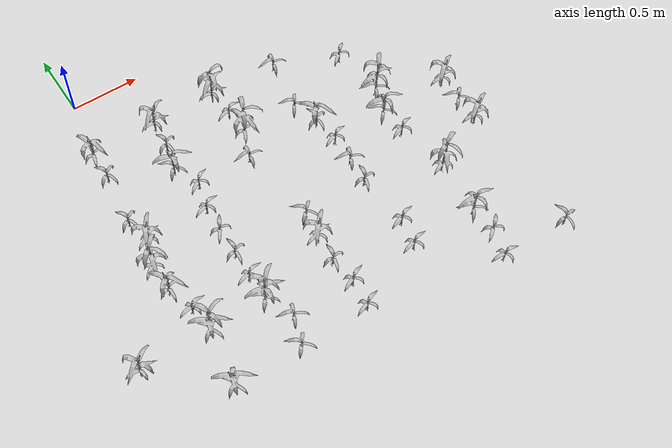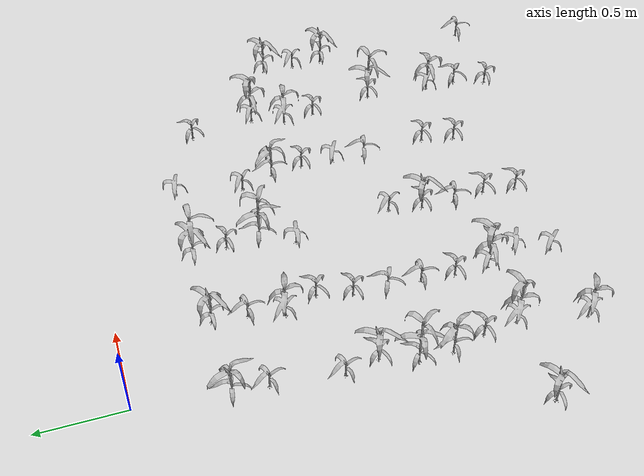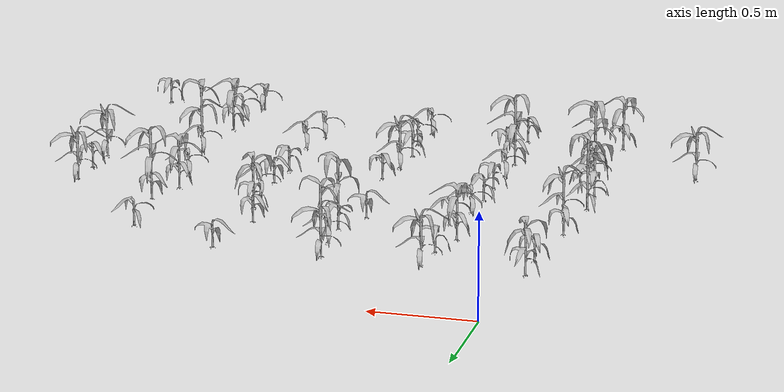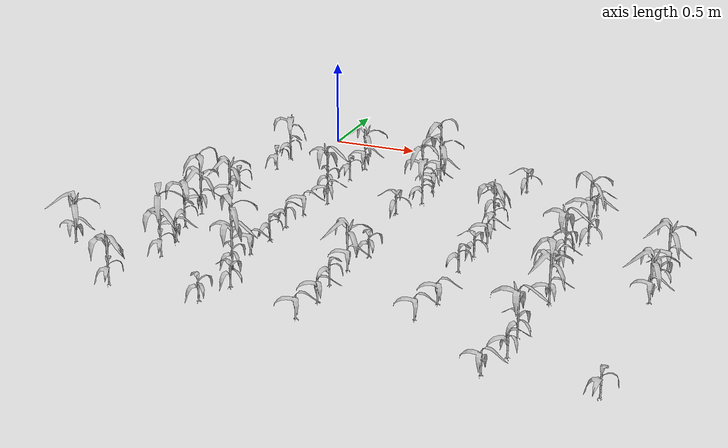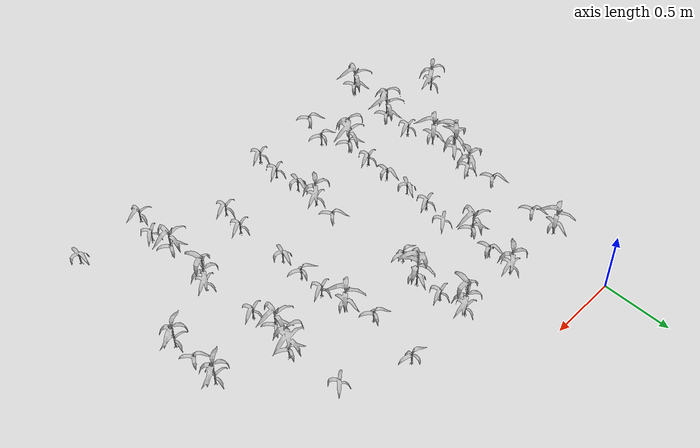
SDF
<sdf version="1.7">
 <world name="default">
  <model name="maize_-0.5837792180438823_-2.07">
   <static>1</static>
   <link name="link">
    <inertial>
     <mass>0.2</mass>
     <inertia>
      <ixx>0.166667</ixx>
      <ixy>0</ixy>
      <ixz>0</ixz>
      <iyy>0.166667</iyy>
      <iyz>0</iyz>
      <izz>0.166667</izz>
     </inertia>
    </inertial>
    <collision name="collision">
     <geometry><mesh><uri>model://corn_4/meshes/corn.dae</uri><scale>0.25 0.25 0.25</scale></mesh></geometry>
     <surface>
      <friction><ode><mu>0</mu><mu2>0</mu2></ode></friction>
      <contact><ode><kp>0</kp><kd>0</kd><max_vel>0</max_vel><min_depth>0.002</min_depth></ode></contact>
     </surface>
    </collision>
    <visual name="visual">
     <geometry><mesh><uri>model://corn_4/meshes/corn.dae</uri><scale>0.25 0.25 0.25</scale></mesh></geometry>
    </visual>
    <velocity_decay><linear>0</linear><angular>0</angular></velocity_decay>
   </link>
   <pose>-0.583779 -2.07 0.05 0 -0 0.062254</pose>
  </model>
  <model name="maize_-0.14747980939358227_-2.46">
   <static>1</static>
   <link name="link">
    <inertial>
     <mass>0.2</mass>
     <inertia>
      <ixx>0.166667</ixx>
      <ixy>0</ixy>
      <ixz>0</ixz>
      <iyy>0.166667</iyy>
      <iyz>0</iyz>
      <izz>0.166667</izz>
     </inertia>
    </inertial>
    <collision name="collision">
     <geometry><mesh><uri>model://corn_4/meshes/corn.dae</uri><scale>0.25 0.25 0.25</scale></mesh></geometry>
     <surface>
      <friction><ode><mu>0</mu><mu2>0</mu2></ode></friction>
      <contact><ode><kp>0</kp><kd>0</kd><max_vel>0</max_vel><min_depth>0.002</min_depth></ode></contact>
     </surface>
    </collision>
    <visual name="visual">
     <geometry><mesh><uri>model://corn_4/meshes/corn.dae</uri><scale>0.25 0.25 0.25</scale></mesh></geometry>
    </visual>
    <velocity_decay><linear>0</linear><angular>0</angular></velocity_decay>
   </link>
   <pose>-0.14748 -2.46 0.05 0 -0 2.08137</pose>
  </model>
  <model name="maize_-0.08241693367694108_-2.07">
   <static>1</static>
   <link name="link">
    <inertial>
     <mass>0.2</mass>
     <inertia>
      <ixx>0.166667</ixx>
      <ixy>0</ixy>
      <ixz>0</ixz>
      <iyy>0.166667</iyy>
      <iyz>0</iyz>
      <izz>0.166667</izz>
     </inertia>
    </inertial>
    <collision name="collision">
     <geometry><mesh><uri>model://corn_5/meshes/corn.dae</uri><scale>0.25 0.25 0.25</scale></mesh></geometry>
     <surface>
      <friction><ode><mu>0</mu><mu2>0</mu2></ode></friction>
      <contact><ode><kp>0</kp><kd>0</kd><max_vel>0</max_vel><min_depth>0.002</min_depth></ode></contact>
     </surface>
    </collision>
    <visual name="visual">
     <geometry><mesh><uri>model://corn_5/meshes/corn.dae</uri><scale>0.25 0.25 0.25</scale></mesh></geometry>
    </visual>
    <velocity_decay><linear>0</linear><angular>0</angular></velocity_decay>
   </link>
   <pose>-0.082417 -2.07 0.05 0 -0 2.10157</pose>
  </model>
  <model name="maize_-0.10383401512277929_-1.8749999999999996">
   <static>1</static>
   <link name="link">
    <inertial>
     <mass>0.2</mass>
     <inertia>
      <ixx>0.166667</ixx>
      <ixy>0</ixy>
      <ixz>0</ixz>
      <iyy>0.166667</iyy>
      <iyz>0</iyz>
      <izz>0.166667</izz>
     </inertia>
    </inertial>
    <collision name="collision">
     <geometry><mesh><uri>model://corn_3/meshes/corn.dae</uri><scale>0.25 0.25 0.25</scale></mesh></geometry>
     <surface>
      <friction><ode><mu>0</mu><mu2>0</mu2></ode></friction>
      <contact><ode><kp>0</kp><kd>0</kd><max_vel>0</max_vel><min_depth>0.002</min_depth></ode></contact>
     </surface>
    </collision>
    <visual name="visual">
     <geometry><mesh><uri>model://corn_3/meshes/corn.dae</uri><scale>0.25 0.25 0.25</scale></mesh></geometry>
    </visual>
    <velocity_decay><linear>0</linear><angular>0</angular></velocity_decay>
   </link>
   <pose>-0.103834 -1.875 0.05 0 -0 0.294704</pose>
  </model>
  <model name="maize_-0.1600403901094582_-1.6799999999999997">
   <static>1</static>
   <link name="link">
    <inertial>
     <mass>0.2</mass>
     <inertia>
      <ixx>0.166667</ixx>
      <ixy>0</ixy>
      <ixz>0</ixz>
      <iyy>0.166667</iyy>
      <iyz>0</iyz>
      <izz>0.166667</izz>
     </inertia>
    </inertial>
    <collision name="collision">
     <geometry><mesh><uri>model://corn_4/meshes/corn.dae</uri><scale>0.25 0.25 0.25</scale></mesh></geometry>
     <surface>
      <friction><ode><mu>0</mu><mu2>0</mu2></ode></friction>
      <contact><ode><kp>0</kp><kd>0</kd><max_vel>0</max_vel><min_depth>0.002</min_depth></ode></contact>
     </surface>
    </collision>
    <visual name="visual">
     <geometry><mesh><uri>model://corn_4/meshes/corn.dae</uri><scale>0.25 0.25 0.25</scale></mesh></geometry>
    </visual>
    <velocity_decay><linear>0</linear><angular>0</angular></velocity_decay>
   </link>
   <pose>-0.16004 -1.68 0.05 0 -0 1.64751</pose>
  </model>
  <model name="maize_-0.16652390188733834_-1.4849999999999999">
   <static>1</static>
   <link name="link">
    <inertial>
     <mass>0.2</mass>
     <inertia>
      <ixx>0.166667</ixx>
      <ixy>0</ixy>
      <ixz>0</ixz>
      <iyy>0.166667</iyy>
      <iyz>0</iyz>
      <izz>0.166667</izz>
     </inertia>
    </inertial>
    <collision name="collision">
     <geometry><mesh><uri>model://corn_5/meshes/corn.dae</uri><scale>0.25 0.25 0.25</scale></mesh></geometry>
     <surface>
      <friction><ode><mu>0</mu><mu2>0</mu2></ode></friction>
      <contact><ode><kp>0</kp><kd>0</kd><max_vel>0</max_vel><min_depth>0.002</min_depth></ode></contact>
     </surface>
    </collision>
    <visual name="visual">
     <geometry><mesh><uri>model://corn_5/meshes/corn.dae</uri><scale>0.25 0.25 0.25</scale></mesh></geometry>
    </visual>
    <velocity_decay><linear>0</linear><angular>0</angular></velocity_decay>
   </link>
   <pose>-0.166524 -1.485 0.05 0 -0 0.761583</pose>
  </model>
  <model name="maize_-0.09321236700476934_-1.2899999999999996">
   <static>1</static>
   <link name="link">
    <inertial>
     <mass>0.2</mass>
     <inertia>
      <ixx>0.166667</ixx>
      <ixy>0</ixy>
      <ixz>0</ixz>
      <iyy>0.166667</iyy>
      <iyz>0</iyz>
      <izz>0.166667</izz>
     </inertia>
    </inertial>
    <collision name="collision">
     <geometry><mesh><uri>model://corn_4/meshes/corn.dae</uri><scale>0.25 0.25 0.25</scale></mesh></geometry>
     <surface>
      <friction><ode><mu>0</mu><mu2>0</mu2></ode></friction>
      <contact><ode><kp>0</kp><kd>0</kd><max_vel>0</max_vel><min_depth>0.002</min_depth></ode></contact>
     </surface>
    </collision>
    <visual name="visual">
     <geometry><mesh><uri>model://corn_4/meshes/corn.dae</uri><scale>0.25 0.25 0.25</scale></mesh></geometry>
    </visual>
    <velocity_decay><linear>0</linear><angular>0</angular></velocity_decay>
   </link>
   <pose>-0.093212 -1.29 0.05 0 -0 0.505659</pose>
  </model>
  <model name="maize_-0.13691010093674263_-1.0949999999999998">
   <static>1</static>
   <link name="link">
    <inertial>
     <mass>0.2</mass>
     <inertia>
      <ixx>0.166667</ixx>
      <ixy>0</ixy>
      <ixz>0</ixz>
      <iyy>0.166667</iyy>
      <iyz>0</iyz>
      <izz>0.166667</izz>
     </inertia>
    </inertial>
    <collision name="collision">
     <geometry><mesh><uri>model://corn_3/meshes/corn.dae</uri><scale>0.25 0.25 0.25</scale></mesh></geometry>
     <surface>
      <friction><ode><mu>0</mu><mu2>0</mu2></ode></friction>
      <contact><ode><kp>0</kp><kd>0</kd><max_vel>0</max_vel><min_depth>0.002</min_depth></ode></contact>
     </surface>
    </collision>
    <visual name="visual">
     <geometry><mesh><uri>model://corn_3/meshes/corn.dae</uri><scale>0.25 0.25 0.25</scale></mesh></geometry>
    </visual>
    <velocity_decay><linear>0</linear><angular>0</angular></velocity_decay>
   </link>
   <pose>-0.13691 -1.095 0.05 0 -0 1.99251</pose>
  </model>
  <model name="maize_-0.08802175489732647_-0.7050000000000001">
   <static>1</static>
   <link name="link">
    <inertial>
     <mass>0.2</mass>
     <inertia>
      <ixx>0.166667</ixx>
      <ixy>0</ixy>
      <ixz>0</ixz>
      <iyy>0.166667</iyy>
      <iyz>0</iyz>
      <izz>0.166667</izz>
     </inertia>
    </inertial>
    <collision name="collision">
     <geometry><mesh><uri>model://corn_3/meshes/corn.dae</uri><scale>0.25 0.25 0.25</scale></mesh></geometry>
     <surface>
      <friction><ode><mu>0</mu><mu2>0</mu2></ode></friction>
      <contact><ode><kp>0</kp><kd>0</kd><max_vel>0</max_vel><min_depth>0.002</min_depth></ode></contact>
     </surface>
    </collision>
    <visual name="visual">
     <geometry><mesh><uri>model://corn_3/meshes/corn.dae</uri><scale>0.25 0.25 0.25</scale></mesh></geometry>
    </visual>
    <velocity_decay><linear>0</linear><angular>0</angular></velocity_decay>
   </link>
   <pose>-0.088022 -0.705 0.05 0 -0 2.01611</pose>
  </model>
  <model name="maize_-0.08969362686402746_-0.5099999999999998">
   <static>1</static>
   <link name="link">
    <inertial>
     <mass>0.2</mass>
     <inertia>
      <ixx>0.166667</ixx>
      <ixy>0</ixy>
      <ixz>0</ixz>
      <iyy>0.166667</iyy>
      <iyz>0</iyz>
      <izz>0.166667</izz>
     </inertia>
    </inertial>
    <collision name="collision">
     <geometry><mesh><uri>model://corn_4/meshes/corn.dae</uri><scale>0.25 0.25 0.25</scale></mesh></geometry>
     <surface>
      <friction><ode><mu>0</mu><mu2>0</mu2></ode></friction>
      <contact><ode><kp>0</kp><kd>0</kd><max_vel>0</max_vel><min_depth>0.002</min_depth></ode></contact>
     </surface>
    </collision>
    <visual name="visual">
     <geometry><mesh><uri>model://corn_4/meshes/corn.dae</uri><scale>0.25 0.25 0.25</scale></mesh></geometry>
    </visual>
    <velocity_decay><linear>0</linear><angular>0</angular></velocity_decay>
   </link>
   <pose>-0.089694 -0.51 0.05 0 -0 1.40322</pose>
  </model>
  <model name="maize_0.3407979610516535_-2.46">
   <static>1</static>
   <link name="link">
    <inertial>
     <mass>0.2</mass>
     <inertia>
      <ixx>0.166667</ixx>
      <ixy>0</ixy>
      <ixz>0</ixz>
      <iyy>0.166667</iyy>
      <iyz>0</iyz>
      <izz>0.166667</izz>
     </inertia>
    </inertial>
    <collision name="collision">
     <geometry><mesh><uri>model://corn_3/meshes/corn.dae</uri><scale>0.25 0.25 0.25</scale></mesh></geometry>
     <surface>
      <friction><ode><mu>0</mu><mu2>0</mu2></ode></friction>
      <contact><ode><kp>0</kp><kd>0</kd><max_vel>0</max_vel><min_depth>0.002</min_depth></ode></contact>
     </surface>
    </collision>
    <visual name="visual">
     <geometry><mesh><uri>model://corn_3/meshes/corn.dae</uri><scale>0.25 0.25 0.25</scale></mesh></geometry>
    </visual>
    <velocity_decay><linear>0</linear><angular>0</angular></velocity_decay>
   </link>
   <pose>0.340798 -2.46 0.05 0 -0 2.43215</pose>
  </model>
  <model name="maize_0.4082817132486259_-2.2649999999999997">
   <static>1</static>
   <link name="link">
    <inertial>
     <mass>0.2</mass>
     <inertia>
      <ixx>0.166667</ixx>
      <ixy>0</ixy>
      <ixz>0</ixz>
      <iyy>0.166667</iyy>
      <iyz>0</iyz>
      <izz>0.166667</izz>
     </inertia>
    </inertial>
    <collision name="collision">
     <geometry><mesh><uri>model://corn_3/meshes/corn.dae</uri><scale>0.25 0.25 0.25</scale></mesh></geometry>
     <surface>
      <friction><ode><mu>0</mu><mu2>0</mu2></ode></friction>
      <contact><ode><kp>0</kp><kd>0</kd><max_vel>0</max_vel><min_depth>0.002</min_depth></ode></contact>
     </surface>
    </collision>
    <visual name="visual">
     <geometry><mesh><uri>model://corn_3/meshes/corn.dae</uri><scale>0.25 0.25 0.25</scale></mesh></geometry>
    </visual>
    <velocity_decay><linear>0</linear><angular>0</angular></velocity_decay>
   </link>
   <pose>0.408282 -2.265 0.05 0 -0 2.75353</pose>
  </model>
  <model name="maize_0.31918511917592485_-2.07">
   <static>1</static>
   <link name="link">
    <inertial>
     <mass>0.2</mass>
     <inertia>
      <ixx>0.166667</ixx>
      <ixy>0</ixy>
      <ixz>0</ixz>
      <iyy>0.166667</iyy>
      <iyz>0</iyz>
      <izz>0.166667</izz>
     </inertia>
    </inertial>
    <collision name="collision">
     <geometry><mesh><uri>model://corn_5/meshes/corn.dae</uri><scale>0.25 0.25 0.25</scale></mesh></geometry>
     <surface>
      <friction><ode><mu>0</mu><mu2>0</mu2></ode></friction>
      <contact><ode><kp>0</kp><kd>0</kd><max_vel>0</max_vel><min_depth>0.002</min_depth></ode></contact>
     </surface>
    </collision>
    <visual name="visual">
     <geometry><mesh><uri>model://corn_5/meshes/corn.dae</uri><scale>0.25 0.25 0.25</scale></mesh></geometry>
    </visual>
    <velocity_decay><linear>0</linear><angular>0</angular></velocity_decay>
   </link>
   <pose>0.319185 -2.07 0.05 0 -0 2.46943</pose>
  </model>
  <model name="maize_0.32128164061425213_-1.8749999999999996">
   <static>1</static>
   <link name="link">
    <inertial>
     <mass>0.2</mass>
     <inertia>
      <ixx>0.166667</ixx>
      <ixy>0</ixy>
      <ixz>0</ixz>
      <iyy>0.166667</iyy>
      <iyz>0</iyz>
      <izz>0.166667</izz>
     </inertia>
    </inertial>
    <collision name="collision">
     <geometry><mesh><uri>model://corn_3/meshes/corn.dae</uri><scale>0.25 0.25 0.25</scale></mesh></geometry>
     <surface>
      <friction><ode><mu>0</mu><mu2>0</mu2></ode></friction>
      <contact><ode><kp>0</kp><kd>0</kd><max_vel>0</max_vel><min_depth>0.002</min_depth></ode></contact>
     </surface>
    </collision>
    <visual name="visual">
     <geometry><mesh><uri>model://corn_3/meshes/corn.dae</uri><scale>0.25 0.25 0.25</scale></mesh></geometry>
    </visual>
    <velocity_decay><linear>0</linear><angular>0</angular></velocity_decay>
   </link>
   <pose>0.321282 -1.875 0.05 0 -0 0.333066</pose>
  </model>
  <model name="maize_0.3348902645084721_-1.6799999999999997">
   <static>1</static>
   <link name="link">
    <inertial>
     <mass>0.2</mass>
     <inertia>
      <ixx>0.166667</ixx>
      <ixy>0</ixy>
      <ixz>0</ixz>
      <iyy>0.166667</iyy>
      <iyz>0</iyz>
      <izz>0.166667</izz>
     </inertia>
    </inertial>
    <collision name="collision">
     <geometry><mesh><uri>model://corn_3/meshes/corn.dae</uri><scale>0.25 0.25 0.25</scale></mesh></geometry>
     <surface>
      <friction><ode><mu>0</mu><mu2>0</mu2></ode></friction>
      <contact><ode><kp>0</kp><kd>0</kd><max_vel>0</max_vel><min_depth>0.002</min_depth></ode></contact>
     </surface>
    </collision>
    <visual name="visual">
     <geometry><mesh><uri>model://corn_3/meshes/corn.dae</uri><scale>0.25 0.25 0.25</scale></mesh></geometry>
    </visual>
    <velocity_decay><linear>0</linear><angular>0</angular></velocity_decay>
   </link>
   <pose>0.33489 -1.68 0.05 0 -0 1.58999</pose>
  </model>
  <model name="maize_0.3356571977783185_-1.4849999999999999">
   <static>1</static>
   <link name="link">
    <inertial>
     <mass>0.2</mass>
     <inertia>
      <ixx>0.166667</ixx>
      <ixy>0</ixy>
      <ixz>0</ixz>
      <iyy>0.166667</iyy>
      <iyz>0</iyz>
      <izz>0.166667</izz>
     </inertia>
    </inertial>
    <collision name="collision">
     <geometry><mesh><uri>model://corn_3/meshes/corn.dae</uri><scale>0.25 0.25 0.25</scale></mesh></geometry>
     <surface>
      <friction><ode><mu>0</mu><mu2>0</mu2></ode></friction>
      <contact><ode><kp>0</kp><kd>0</kd><max_vel>0</max_vel><min_depth>0.002</min_depth></ode></contact>
     </surface>
    </collision>
    <visual name="visual">
     <geometry><mesh><uri>model://corn_3/meshes/corn.dae</uri><scale>0.25 0.25 0.25</scale></mesh></geometry>
    </visual>
    <velocity_decay><linear>0</linear><angular>0</angular></velocity_decay>
   </link>
   <pose>0.335657 -1.485 0.05 0 -0 1.1115</pose>
  </model>
  <model name="maize_0.3486746501304395_-1.2899999999999996">
   <static>1</static>
   <link name="link">
    <inertial>
     <mass>0.2</mass>
     <inertia>
      <ixx>0.166667</ixx>
      <ixy>0</ixy>
      <ixz>0</ixz>
      <iyy>0.166667</iyy>
      <iyz>0</iyz>
      <izz>0.166667</izz>
     </inertia>
    </inertial>
    <collision name="collision">
     <geometry><mesh><uri>model://corn_3/meshes/corn.dae</uri><scale>0.25 0.25 0.25</scale></mesh></geometry>
     <surface>
      <friction><ode><mu>0</mu><mu2>0</mu2></ode></friction>
      <contact><ode><kp>0</kp><kd>0</kd><max_vel>0</max_vel><min_depth>0.002</min_depth></ode></contact>
     </surface>
    </collision>
    <visual name="visual">
     <geometry><mesh><uri>model://corn_3/meshes/corn.dae</uri><scale>0.25 0.25 0.25</scale></mesh></geometry>
    </visual>
    <velocity_decay><linear>0</linear><angular>0</angular></velocity_decay>
   </link>
   <pose>0.348675 -1.29 0.05 0 -0 0.383695</pose>
  </model>
  <model name="maize_0.4041965530707696_-1.0949999999999998">
   <static>1</static>
   <link name="link">
    <inertial>
     <mass>0.2</mass>
     <inertia>
      <ixx>0.166667</ixx>
      <ixy>0</ixy>
      <ixz>0</ixz>
      <iyy>0.166667</iyy>
      <iyz>0</iyz>
      <izz>0.166667</izz>
     </inertia>
    </inertial>
    <collision name="collision">
     <geometry><mesh><uri>model://corn_3/meshes/corn.dae</uri><scale>0.25 0.25 0.25</scale></mesh></geometry>
     <surface>
      <friction><ode><mu>0</mu><mu2>0</mu2></ode></friction>
      <contact><ode><kp>0</kp><kd>0</kd><max_vel>0</max_vel><min_depth>0.002</min_depth></ode></contact>
     </surface>
    </collision>
    <visual name="visual">
     <geometry><mesh><uri>model://corn_3/meshes/corn.dae</uri><scale>0.25 0.25 0.25</scale></mesh></geometry>
    </visual>
    <velocity_decay><linear>0</linear><angular>0</angular></velocity_decay>
   </link>
   <pose>0.404197 -1.095 0.05 0 -0 0.663461</pose>
  </model>
  <model name="maize_0.3207380343115877_-0.8999999999999995">
   <static>1</static>
   <link name="link">
    <inertial>
     <mass>0.2</mass>
     <inertia>
      <ixx>0.166667</ixx>
      <ixy>0</ixy>
      <ixz>0</ixz>
      <iyy>0.166667</iyy>
      <iyz>0</iyz>
      <izz>0.166667</izz>
     </inertia>
    </inertial>
    <collision name="collision">
     <geometry><mesh><uri>model://corn_4/meshes/corn.dae</uri><scale>0.25 0.25 0.25</scale></mesh></geometry>
     <surface>
      <friction><ode><mu>0</mu><mu2>0</mu2></ode></friction>
      <contact><ode><kp>0</kp><kd>0</kd><max_vel>0</max_vel><min_depth>0.002</min_depth></ode></contact>
     </surface>
    </collision>
    <visual name="visual">
     <geometry><mesh><uri>model://corn_4/meshes/corn.dae</uri><scale>0.25 0.25 0.25</scale></mesh></geometry>
    </visual>
    <velocity_decay><linear>0</linear><angular>0</angular></velocity_decay>
   </link>
   <pose>0.320738 -0.9 0.05 0 -0 2.34155</pose>
  </model>
  <model name="maize_0.3733107304725088_-0.7050000000000001">
   <static>1</static>
   <link name="link">
    <inertial>
     <mass>0.2</mass>
     <inertia>
      <ixx>0.166667</ixx>
      <ixy>0</ixy>
      <ixz>0</ixz>
      <iyy>0.166667</iyy>
      <iyz>0</iyz>
      <izz>0.166667</izz>
     </inertia>
    </inertial>
    <collision name="collision">
     <geometry><mesh><uri>model://corn_3/meshes/corn.dae</uri><scale>0.25 0.25 0.25</scale></mesh></geometry>
     <surface>
      <friction><ode><mu>0</mu><mu2>0</mu2></ode></friction>
      <contact><ode><kp>0</kp><kd>0</kd><max_vel>0</max_vel><min_depth>0.002</min_depth></ode></contact>
     </surface>
    </collision>
    <visual name="visual">
     <geometry><mesh><uri>model://corn_3/meshes/corn.dae</uri><scale>0.25 0.25 0.25</scale></mesh></geometry>
    </visual>
    <velocity_decay><linear>0</linear><angular>0</angular></velocity_decay>
   </link>
   <pose>0.373311 -0.705 0.05 0 -0 1.7845</pose>
  </model>
  <model name="maize_0.38780343678202717_-0.5099999999999998">
   <static>1</static>
   <link name="link">
    <inertial>
     <mass>0.2</mass>
     <inertia>
      <ixx>0.166667</ixx>
      <ixy>0</ixy>
      <ixz>0</ixz>
      <iyy>0.166667</iyy>
      <iyz>0</iyz>
      <izz>0.166667</izz>
     </inertia>
    </inertial>
    <collision name="collision">
     <geometry><mesh><uri>model://corn_4/meshes/corn.dae</uri><scale>0.25 0.25 0.25</scale></mesh></geometry>
     <surface>
      <friction><ode><mu>0</mu><mu2>0</mu2></ode></friction>
      <contact><ode><kp>0</kp><kd>0</kd><max_vel>0</max_vel><min_depth>0.002</min_depth></ode></contact>
     </surface>
    </collision>
    <visual name="visual">
     <geometry><mesh><uri>model://corn_4/meshes/corn.dae</uri><scale>0.25 0.25 0.25</scale></mesh></geometry>
    </visual>
    <velocity_decay><linear>0</linear><angular>0</angular></velocity_decay>
   </link>
   <pose>0.387803 -0.51 0.05 0 -0 0.116198</pose>
  </model>
  <model name="maize_0.8408730017321758_-2.46">
   <static>1</static>
   <link name="link">
    <inertial>
     <mass>0.2</mass>
     <inertia>
      <ixx>0.166667</ixx>
      <ixy>0</ixy>
      <ixz>0</ixz>
      <iyy>0.166667</iyy>
      <iyz>0</iyz>
      <izz>0.166667</izz>
     </inertia>
    </inertial>
    <collision name="collision">
     <geometry><mesh><uri>model://corn_3/meshes/corn.dae</uri><scale>0.25 0.25 0.25</scale></mesh></geometry>
     <surface>
      <friction><ode><mu>0</mu><mu2>0</mu2></ode></friction>
      <contact><ode><kp>0</kp><kd>0</kd><max_vel>0</max_vel><min_depth>0.002</min_depth></ode></contact>
     </surface>
    </collision>
    <visual name="visual">
     <geometry><mesh><uri>model://corn_3/meshes/corn.dae</uri><scale>0.25 0.25 0.25</scale></mesh></geometry>
    </visual>
    <velocity_decay><linear>0</linear><angular>0</angular></velocity_decay>
   </link>
   <pose>0.840873 -2.46 0.05 0 -0 0.426027</pose>
  </model>
  <model name="maize_0.8644949424762938_-2.2649999999999997">
   <static>1</static>
   <link name="link">
    <inertial>
     <mass>0.2</mass>
     <inertia>
      <ixx>0.166667</ixx>
      <ixy>0</ixy>
      <ixz>0</ixz>
      <iyy>0.166667</iyy>
      <iyz>0</iyz>
      <izz>0.166667</izz>
     </inertia>
    </inertial>
    <collision name="collision">
     <geometry><mesh><uri>model://corn_3/meshes/corn.dae</uri><scale>0.25 0.25 0.25</scale></mesh></geometry>
     <surface>
      <friction><ode><mu>0</mu><mu2>0</mu2></ode></friction>
      <contact><ode><kp>0</kp><kd>0</kd><max_vel>0</max_vel><min_depth>0.002</min_depth></ode></contact>
     </surface>
    </collision>
    <visual name="visual">
     <geometry><mesh><uri>model://corn_3/meshes/corn.dae</uri><scale>0.25 0.25 0.25</scale></mesh></geometry>
    </visual>
    <velocity_decay><linear>0</linear><angular>0</angular></velocity_decay>
   </link>
   <pose>0.864495 -2.265 0.05 0 -0 0.501265</pose>
  </model>
  <model name="maize_0.8407670695656901_-2.07">
   <static>1</static>
   <link name="link">
    <inertial>
     <mass>0.2</mass>
     <inertia>
      <ixx>0.166667</ixx>
      <ixy>0</ixy>
      <ixz>0</ixz>
      <iyy>0.166667</iyy>
      <iyz>0</iyz>
      <izz>0.166667</izz>
     </inertia>
    </inertial>
    <collision name="collision">
     <geometry><mesh><uri>model://corn_3/meshes/corn.dae</uri><scale>0.25 0.25 0.25</scale></mesh></geometry>
     <surface>
      <friction><ode><mu>0</mu><mu2>0</mu2></ode></friction>
      <contact><ode><kp>0</kp><kd>0</kd><max_vel>0</max_vel><min_depth>0.002</min_depth></ode></contact>
     </surface>
    </collision>
    <visual name="visual">
     <geometry><mesh><uri>model://corn_3/meshes/corn.dae</uri><scale>0.25 0.25 0.25</scale></mesh></geometry>
    </visual>
    <velocity_decay><linear>0</linear><angular>0</angular></velocity_decay>
   </link>
   <pose>0.840767 -2.07 0.05 0 -0 1.42495</pose>
  </model>
  <model name="maize_0.8520973788808034_-1.8749999999999996">
   <static>1</static>
   <link name="link">
    <inertial>
     <mass>0.2</mass>
     <inertia>
      <ixx>0.166667</ixx>
      <ixy>0</ixy>
      <ixz>0</ixz>
      <iyy>0.166667</iyy>
      <iyz>0</iyz>
      <izz>0.166667</izz>
     </inertia>
    </inertial>
    <collision name="collision">
     <geometry><mesh><uri>model://corn_4/meshes/corn.dae</uri><scale>0.25 0.25 0.25</scale></mesh></geometry>
     <surface>
      <friction><ode><mu>0</mu><mu2>0</mu2></ode></friction>
      <contact><ode><kp>0</kp><kd>0</kd><max_vel>0</max_vel><min_depth>0.002</min_depth></ode></contact>
     </surface>
    </collision>
    <visual name="visual">
     <geometry><mesh><uri>model://corn_4/meshes/corn.dae</uri><scale>0.25 0.25 0.25</scale></mesh></geometry>
    </visual>
    <velocity_decay><linear>0</linear><angular>0</angular></velocity_decay>
   </link>
   <pose>0.852097 -1.875 0.05 0 -0 0.305675</pose>
  </model>
  <model name="maize_0.8877786162635626_-1.6799999999999997">
   <static>1</static>
   <link name="link">
    <inertial>
     <mass>0.2</mass>
     <inertia>
      <ixx>0.166667</ixx>
      <ixy>0</ixy>
      <ixz>0</ixz>
      <iyy>0.166667</iyy>
      <iyz>0</iyz>
      <izz>0.166667</izz>
     </inertia>
    </inertial>
    <collision name="collision">
     <geometry><mesh><uri>model://corn_3/meshes/corn.dae</uri><scale>0.25 0.25 0.25</scale></mesh></geometry>
     <surface>
      <friction><ode><mu>0</mu><mu2>0</mu2></ode></friction>
      <contact><ode><kp>0</kp><kd>0</kd><max_vel>0</max_vel><min_depth>0.002</min_depth></ode></contact>
     </surface>
    </collision>
    <visual name="visual">
     <geometry><mesh><uri>model://corn_3/meshes/corn.dae</uri><scale>0.25 0.25 0.25</scale></mesh></geometry>
    </visual>
    <velocity_decay><linear>0</linear><angular>0</angular></velocity_decay>
   </link>
   <pose>0.887779 -1.68 0.05 0 -0 2.26369</pose>
  </model>
  <model name="maize_0.8054621796796552_-1.0949999999999998">
   <static>1</static>
   <link name="link">
    <inertial>
     <mass>0.2</mass>
     <inertia>
      <ixx>0.166667</ixx>
      <ixy>0</ixy>
      <ixz>0</ixz>
      <iyy>0.166667</iyy>
      <iyz>0</iyz>
      <izz>0.166667</izz>
     </inertia>
    </inertial>
    <collision name="collision">
     <geometry><mesh><uri>model://corn_3/meshes/corn.dae</uri><scale>0.25 0.25 0.25</scale></mesh></geometry>
     <surface>
      <friction><ode><mu>0</mu><mu2>0</mu2></ode></friction>
      <contact><ode><kp>0</kp><kd>0</kd><max_vel>0</max_vel><min_depth>0.002</min_depth></ode></contact>
     </surface>
    </collision>
    <visual name="visual">
     <geometry><mesh><uri>model://corn_3/meshes/corn.dae</uri><scale>0.25 0.25 0.25</scale></mesh></geometry>
    </visual>
    <velocity_decay><linear>0</linear><angular>0</angular></velocity_decay>
   </link>
   <pose>0.805462 -1.095 0.05 0 -0 3.06598</pose>
  </model>
  <model name="maize_0.8857201229816367_-0.8999999999999995">
   <static>1</static>
   <link name="link">
    <inertial>
     <mass>0.2</mass>
     <inertia>
      <ixx>0.166667</ixx>
      <ixy>0</ixy>
      <ixz>0</ixz>
      <iyy>0.166667</iyy>
      <iyz>0</iyz>
      <izz>0.166667</izz>
     </inertia>
    </inertial>
    <collision name="collision">
     <geometry><mesh><uri>model://corn_5/meshes/corn.dae</uri><scale>0.25 0.25 0.25</scale></mesh></geometry>
     <surface>
      <friction><ode><mu>0</mu><mu2>0</mu2></ode></friction>
      <contact><ode><kp>0</kp><kd>0</kd><max_vel>0</max_vel><min_depth>0.002</min_depth></ode></contact>
     </surface>
    </collision>
    <visual name="visual">
     <geometry><mesh><uri>model://corn_5/meshes/corn.dae</uri><scale>0.25 0.25 0.25</scale></mesh></geometry>
    </visual>
    <velocity_decay><linear>0</linear><angular>0</angular></velocity_decay>
   </link>
   <pose>0.88572 -0.9 0.05 0 -0 1.24362</pose>
  </model>
  <model name="maize_0.8773333724235551_-0.7050000000000001">
   <static>1</static>
   <link name="link">
    <inertial>
     <mass>0.2</mass>
     <inertia>
      <ixx>0.166667</ixx>
      <ixy>0</ixy>
      <ixz>0</ixz>
      <iyy>0.166667</iyy>
      <iyz>0</iyz>
      <izz>0.166667</izz>
     </inertia>
    </inertial>
    <collision name="collision">
     <geometry><mesh><uri>model://corn_3/meshes/corn.dae</uri><scale>0.25 0.25 0.25</scale></mesh></geometry>
     <surface>
      <friction><ode><mu>0</mu><mu2>0</mu2></ode></friction>
      <contact><ode><kp>0</kp><kd>0</kd><max_vel>0</max_vel><min_depth>0.002</min_depth></ode></contact>
     </surface>
    </collision>
    <visual name="visual">
     <geometry><mesh><uri>model://corn_3/meshes/corn.dae</uri><scale>0.25 0.25 0.25</scale></mesh></geometry>
    </visual>
    <velocity_decay><linear>0</linear><angular>0</angular></velocity_decay>
   </link>
   <pose>0.877333 -0.705 0.05 0 -0 0.33389</pose>
  </model>
  <model name="maize_0.8543321118603586_-0.5099999999999998">
   <static>1</static>
   <link name="link">
    <inertial>
     <mass>0.2</mass>
     <inertia>
      <ixx>0.166667</ixx>
      <ixy>0</ixy>
      <ixz>0</ixz>
      <iyy>0.166667</iyy>
      <iyz>0</iyz>
      <izz>0.166667</izz>
     </inertia>
    </inertial>
    <collision name="collision">
     <geometry><mesh><uri>model://corn_5/meshes/corn.dae</uri><scale>0.25 0.25 0.25</scale></mesh></geometry>
     <surface>
      <friction><ode><mu>0</mu><mu2>0</mu2></ode></friction>
      <contact><ode><kp>0</kp><kd>0</kd><max_vel>0</max_vel><min_depth>0.002</min_depth></ode></contact>
     </surface>
    </collision>
    <visual name="visual">
     <geometry><mesh><uri>model://corn_5/meshes/corn.dae</uri><scale>0.25 0.25 0.25</scale></mesh></geometry>
    </visual>
    <velocity_decay><linear>0</linear><angular>0</angular></velocity_decay>
   </link>
   <pose>0.854332 -0.51 0.05 0 -0 0.013165</pose>
  </model>
  <model name="maize_1.3493263120709287_-2.2649999999999997">
   <static>1</static>
   <link name="link">
    <inertial>
     <mass>0.2</mass>
     <inertia>
      <ixx>0.166667</ixx>
      <ixy>0</ixy>
      <ixz>0</ixz>
      <iyy>0.166667</iyy>
      <iyz>0</iyz>
      <izz>0.166667</izz>
     </inertia>
    </inertial>
    <collision name="collision">
     <geometry><mesh><uri>model://corn_3/meshes/corn.dae</uri><scale>0.25 0.25 0.25</scale></mesh></geometry>
     <surface>
      <friction><ode><mu>0</mu><mu2>0</mu2></ode></friction>
      <contact><ode><kp>0</kp><kd>0</kd><max_vel>0</max_vel><min_depth>0.002</min_depth></ode></contact>
     </surface>
    </collision>
    <visual name="visual">
     <geometry><mesh><uri>model://corn_3/meshes/corn.dae</uri><scale>0.25 0.25 0.25</scale></mesh></geometry>
    </visual>
    <velocity_decay><linear>0</linear><angular>0</angular></velocity_decay>
   </link>
   <pose>1.34933 -2.265 0.05 0 -0 0.310695</pose>
  </model>
  <model name="maize_1.3914714825228036_-2.07">
   <static>1</static>
   <link name="link">
    <inertial>
     <mass>0.2</mass>
     <inertia>
      <ixx>0.166667</ixx>
      <ixy>0</ixy>
      <ixz>0</ixz>
      <iyy>0.166667</iyy>
      <iyz>0</iyz>
      <izz>0.166667</izz>
     </inertia>
    </inertial>
    <collision name="collision">
     <geometry><mesh><uri>model://corn_3/meshes/corn.dae</uri><scale>0.25 0.25 0.25</scale></mesh></geometry>
     <surface>
      <friction><ode><mu>0</mu><mu2>0</mu2></ode></friction>
      <contact><ode><kp>0</kp><kd>0</kd><max_vel>0</max_vel><min_depth>0.002</min_depth></ode></contact>
     </surface>
    </collision>
    <visual name="visual">
     <geometry><mesh><uri>model://corn_3/meshes/corn.dae</uri><scale>0.25 0.25 0.25</scale></mesh></geometry>
    </visual>
    <velocity_decay><linear>0</linear><angular>0</angular></velocity_decay>
   </link>
   <pose>1.39147 -2.07 0.05 0 -0 0.380533</pose>
  </model>
  <model name="maize_1.3621175424927117_-1.6799999999999997">
   <static>1</static>
   <link name="link">
    <inertial>
     <mass>0.2</mass>
     <inertia>
      <ixx>0.166667</ixx>
      <ixy>0</ixy>
      <ixz>0</ixz>
      <iyy>0.166667</iyy>
      <iyz>0</iyz>
      <izz>0.166667</izz>
     </inertia>
    </inertial>
    <collision name="collision">
     <geometry><mesh><uri>model://corn_3/meshes/corn.dae</uri><scale>0.25 0.25 0.25</scale></mesh></geometry>
     <surface>
      <friction><ode><mu>0</mu><mu2>0</mu2></ode></friction>
      <contact><ode><kp>0</kp><kd>0</kd><max_vel>0</max_vel><min_depth>0.002</min_depth></ode></contact>
     </surface>
    </collision>
    <visual name="visual">
     <geometry><mesh><uri>model://corn_3/meshes/corn.dae</uri><scale>0.25 0.25 0.25</scale></mesh></geometry>
    </visual>
    <velocity_decay><linear>0</linear><angular>0</angular></velocity_decay>
   </link>
   <pose>1.36212 -1.68 0.05 0 -0 1.34547</pose>
  </model>
  <model name="maize_1.3778190681044205_-1.4849999999999999">
   <static>1</static>
   <link name="link">
    <inertial>
     <mass>0.2</mass>
     <inertia>
      <ixx>0.166667</ixx>
      <ixy>0</ixy>
      <ixz>0</ixz>
      <iyy>0.166667</iyy>
      <iyz>0</iyz>
      <izz>0.166667</izz>
     </inertia>
    </inertial>
    <collision name="collision">
     <geometry><mesh><uri>model://corn_3/meshes/corn.dae</uri><scale>0.25 0.25 0.25</scale></mesh></geometry>
     <surface>
      <friction><ode><mu>0</mu><mu2>0</mu2></ode></friction>
      <contact><ode><kp>0</kp><kd>0</kd><max_vel>0</max_vel><min_depth>0.002</min_depth></ode></contact>
     </surface>
    </collision>
    <visual name="visual">
     <geometry><mesh><uri>model://corn_3/meshes/corn.dae</uri><scale>0.25 0.25 0.25</scale></mesh></geometry>
    </visual>
    <velocity_decay><linear>0</linear><angular>0</angular></velocity_decay>
   </link>
   <pose>1.37782 -1.485 0.05 0 -0 2.7751</pose>
  </model>
  <model name="maize_1.3862033544763586_-1.2899999999999996">
   <static>1</static>
   <link name="link">
    <inertial>
     <mass>0.2</mass>
     <inertia>
      <ixx>0.166667</ixx>
      <ixy>0</ixy>
      <ixz>0</ixz>
      <iyy>0.166667</iyy>
      <iyz>0</iyz>
      <izz>0.166667</izz>
     </inertia>
    </inertial>
    <collision name="collision">
     <geometry><mesh><uri>model://corn_3/meshes/corn.dae</uri><scale>0.25 0.25 0.25</scale></mesh></geometry>
     <surface>
      <friction><ode><mu>0</mu><mu2>0</mu2></ode></friction>
      <contact><ode><kp>0</kp><kd>0</kd><max_vel>0</max_vel><min_depth>0.002</min_depth></ode></contact>
     </surface>
    </collision>
    <visual name="visual">
     <geometry><mesh><uri>model://corn_3/meshes/corn.dae</uri><scale>0.25 0.25 0.25</scale></mesh></geometry>
    </visual>
    <velocity_decay><linear>0</linear><angular>0</angular></velocity_decay>
   </link>
   <pose>1.3862 -1.29 0.05 0 -0 0.402844</pose>
  </model>
  <model name="maize_1.359012150334974_-1.0949999999999998">
   <static>1</static>
   <link name="link">
    <inertial>
     <mass>0.2</mass>
     <inertia>
      <ixx>0.166667</ixx>
      <ixy>0</ixy>
      <ixz>0</ixz>
      <iyy>0.166667</iyy>
      <iyz>0</iyz>
      <izz>0.166667</izz>
     </inertia>
    </inertial>
    <collision name="collision">
     <geometry><mesh><uri>model://corn_4/meshes/corn.dae</uri><scale>0.25 0.25 0.25</scale></mesh></geometry>
     <surface>
      <friction><ode><mu>0</mu><mu2>0</mu2></ode></friction>
      <contact><ode><kp>0</kp><kd>0</kd><max_vel>0</max_vel><min_depth>0.002</min_depth></ode></contact>
     </surface>
    </collision>
    <visual name="visual">
     <geometry><mesh><uri>model://corn_4/meshes/corn.dae</uri><scale>0.25 0.25 0.25</scale></mesh></geometry>
    </visual>
    <velocity_decay><linear>0</linear><angular>0</angular></velocity_decay>
   </link>
   <pose>1.35901 -1.095 0.05 0 -0 1.66436</pose>
  </model>
  <model name="maize_1.3001998048612373_-0.8999999999999995">
   <static>1</static>
   <link name="link">
    <inertial>
     <mass>0.2</mass>
     <inertia>
      <ixx>0.166667</ixx>
      <ixy>0</ixy>
      <ixz>0</ixz>
      <iyy>0.166667</iyy>
      <iyz>0</iyz>
      <izz>0.166667</izz>
     </inertia>
    </inertial>
    <collision name="collision">
     <geometry><mesh><uri>model://corn_3/meshes/corn.dae</uri><scale>0.25 0.25 0.25</scale></mesh></geometry>
     <surface>
      <friction><ode><mu>0</mu><mu2>0</mu2></ode></friction>
      <contact><ode><kp>0</kp><kd>0</kd><max_vel>0</max_vel><min_depth>0.002</min_depth></ode></contact>
     </surface>
    </collision>
    <visual name="visual">
     <geometry><mesh><uri>model://corn_3/meshes/corn.dae</uri><scale>0.25 0.25 0.25</scale></mesh></geometry>
    </visual>
    <velocity_decay><linear>0</linear><angular>0</angular></velocity_decay>
   </link>
   <pose>1.3002 -0.9 0.05 0 -0 2.55114</pose>
  </model>
  <model name="maize_1.3682708168582984_-0.5099999999999998">
   <static>1</static>
   <link name="link">
    <inertial>
     <mass>0.2</mass>
     <inertia>
      <ixx>0.166667</ixx>
      <ixy>0</ixy>
      <ixz>0</ixz>
      <iyy>0.166667</iyy>
      <iyz>0</iyz>
      <izz>0.166667</izz>
     </inertia>
    </inertial>
    <collision name="collision">
     <geometry><mesh><uri>model://corn_3/meshes/corn.dae</uri><scale>0.25 0.25 0.25</scale></mesh></geometry>
     <surface>
      <friction><ode><mu>0</mu><mu2>0</mu2></ode></friction>
      <contact><ode><kp>0</kp><kd>0</kd><max_vel>0</max_vel><min_depth>0.002</min_depth></ode></contact>
     </surface>
    </collision>
    <visual name="visual">
     <geometry><mesh><uri>model://corn_3/meshes/corn.dae</uri><scale>0.25 0.25 0.25</scale></mesh></geometry>
    </visual>
    <velocity_decay><linear>0</linear><angular>0</angular></velocity_decay>
   </link>
   <pose>1.36827 -0.51 0.05 0 -0 2.97334</pose>
  </model>
  <model name="maize_1.7929489126290294_-2.655">
   <static>1</static>
   <link name="link">
    <inertial>
     <mass>0.2</mass>
     <inertia>
      <ixx>0.166667</ixx>
      <ixy>0</ixy>
      <ixz>0</ixz>
      <iyy>0.166667</iyy>
      <iyz>0</iyz>
      <izz>0.166667</izz>
     </inertia>
    </inertial>
    <collision name="collision">
     <geometry><mesh><uri>model://corn_3/meshes/corn.dae</uri><scale>0.25 0.25 0.25</scale></mesh></geometry>
     <surface>
      <friction><ode><mu>0</mu><mu2>0</mu2></ode></friction>
      <contact><ode><kp>0</kp><kd>0</kd><max_vel>0</max_vel><min_depth>0.002</min_depth></ode></contact>
     </surface>
    </collision>
    <visual name="visual">
     <geometry><mesh><uri>model://corn_3/meshes/corn.dae</uri><scale>0.25 0.25 0.25</scale></mesh></geometry>
    </visual>
    <velocity_decay><linear>0</linear><angular>0</angular></velocity_decay>
   </link>
   <pose>1.79295 -2.655 0.05 0 -0 0.035427</pose>
  </model>
  <model name="maize_1.8503444942923495_-2.46">
   <static>1</static>
   <link name="link">
    <inertial>
     <mass>0.2</mass>
     <inertia>
      <ixx>0.166667</ixx>
      <ixy>0</ixy>
      <ixz>0</ixz>
      <iyy>0.166667</iyy>
      <iyz>0</iyz>
      <izz>0.166667</izz>
     </inertia>
    </inertial>
    <collision name="collision">
     <geometry><mesh><uri>model://corn_3/meshes/corn.dae</uri><scale>0.25 0.25 0.25</scale></mesh></geometry>
     <surface>
      <friction><ode><mu>0</mu><mu2>0</mu2></ode></friction>
      <contact><ode><kp>0</kp><kd>0</kd><max_vel>0</max_vel><min_depth>0.002</min_depth></ode></contact>
     </surface>
    </collision>
    <visual name="visual">
     <geometry><mesh><uri>model://corn_3/meshes/corn.dae</uri><scale>0.25 0.25 0.25</scale></mesh></geometry>
    </visual>
    <velocity_decay><linear>0</linear><angular>0</angular></velocity_decay>
   </link>
   <pose>1.85034 -2.46 0.05 0 -0 0.772776</pose>
  </model>
  <model name="maize_1.8376767708230468_-2.2649999999999997">
   <static>1</static>
   <link name="link">
    <inertial>
     <mass>0.2</mass>
     <inertia>
      <ixx>0.166667</ixx>
      <ixy>0</ixy>
      <ixz>0</ixz>
      <iyy>0.166667</iyy>
      <iyz>0</iyz>
      <izz>0.166667</izz>
     </inertia>
    </inertial>
    <collision name="collision">
     <geometry><mesh><uri>model://corn_4/meshes/corn.dae</uri><scale>0.25 0.25 0.25</scale></mesh></geometry>
     <surface>
      <friction><ode><mu>0</mu><mu2>0</mu2></ode></friction>
      <contact><ode><kp>0</kp><kd>0</kd><max_vel>0</max_vel><min_depth>0.002</min_depth></ode></contact>
     </surface>
    </collision>
    <visual name="visual">
     <geometry><mesh><uri>model://corn_4/meshes/corn.dae</uri><scale>0.25 0.25 0.25</scale></mesh></geometry>
    </visual>
    <velocity_decay><linear>0</linear><angular>0</angular></velocity_decay>
   </link>
   <pose>1.83768 -2.265 0.05 0 -0 2.57668</pose>
  </model>
  <model name="maize_1.8747983271373794_-1.8749999999999996">
   <static>1</static>
   <link name="link">
    <inertial>
     <mass>0.2</mass>
     <inertia>
      <ixx>0.166667</ixx>
      <ixy>0</ixy>
      <ixz>0</ixz>
      <iyy>0.166667</iyy>
      <iyz>0</iyz>
      <izz>0.166667</izz>
     </inertia>
    </inertial>
    <collision name="collision">
     <geometry><mesh><uri>model://corn_5/meshes/corn.dae</uri><scale>0.25 0.25 0.25</scale></mesh></geometry>
     <surface>
      <friction><ode><mu>0</mu><mu2>0</mu2></ode></friction>
      <contact><ode><kp>0</kp><kd>0</kd><max_vel>0</max_vel><min_depth>0.002</min_depth></ode></contact>
     </surface>
    </collision>
    <visual name="visual">
     <geometry><mesh><uri>model://corn_5/meshes/corn.dae</uri><scale>0.25 0.25 0.25</scale></mesh></geometry>
    </visual>
    <velocity_decay><linear>0</linear><angular>0</angular></velocity_decay>
   </link>
   <pose>1.8748 -1.875 0.05 0 -0 0.46512</pose>
  </model>
  <model name="maize_1.815272866002775_-1.4849999999999999">
   <static>1</static>
   <link name="link">
    <inertial>
     <mass>0.2</mass>
     <inertia>
      <ixx>0.166667</ixx>
      <ixy>0</ixy>
      <ixz>0</ixz>
      <iyy>0.166667</iyy>
      <iyz>0</iyz>
      <izz>0.166667</izz>
     </inertia>
    </inertial>
    <collision name="collision">
     <geometry><mesh><uri>model://corn_3/meshes/corn.dae</uri><scale>0.25 0.25 0.25</scale></mesh></geometry>
     <surface>
      <friction><ode><mu>0</mu><mu2>0</mu2></ode></friction>
      <contact><ode><kp>0</kp><kd>0</kd><max_vel>0</max_vel><min_depth>0.002</min_depth></ode></contact>
     </surface>
    </collision>
    <visual name="visual">
     <geometry><mesh><uri>model://corn_3/meshes/corn.dae</uri><scale>0.25 0.25 0.25</scale></mesh></geometry>
    </visual>
    <velocity_decay><linear>0</linear><angular>0</angular></velocity_decay>
   </link>
   <pose>1.81527 -1.485 0.05 0 -0 0.432004</pose>
  </model>
  <model name="maize_1.7953299479717781_-1.2899999999999996">
   <static>1</static>
   <link name="link">
    <inertial>
     <mass>0.2</mass>
     <inertia>
      <ixx>0.166667</ixx>
      <ixy>0</ixy>
      <ixz>0</ixz>
      <iyy>0.166667</iyy>
      <iyz>0</iyz>
      <izz>0.166667</izz>
     </inertia>
    </inertial>
    <collision name="collision">
     <geometry><mesh><uri>model://corn_4/meshes/corn.dae</uri><scale>0.25 0.25 0.25</scale></mesh></geometry>
     <surface>
      <friction><ode><mu>0</mu><mu2>0</mu2></ode></friction>
      <contact><ode><kp>0</kp><kd>0</kd><max_vel>0</max_vel><min_depth>0.002</min_depth></ode></contact>
     </surface>
    </collision>
    <visual name="visual">
     <geometry><mesh><uri>model://corn_4/meshes/corn.dae</uri><scale>0.25 0.25 0.25</scale></mesh></geometry>
    </visual>
    <velocity_decay><linear>0</linear><angular>0</angular></velocity_decay>
   </link>
   <pose>1.79533 -1.29 0.05 0 -0 2.4053</pose>
  </model>
  <model name="maize_1.867254166483081_-1.0949999999999998">
   <static>1</static>
   <link name="link">
    <inertial>
     <mass>0.2</mass>
     <inertia>
      <ixx>0.166667</ixx>
      <ixy>0</ixy>
      <ixz>0</ixz>
      <iyy>0.166667</iyy>
      <iyz>0</iyz>
      <izz>0.166667</izz>
     </inertia>
    </inertial>
    <collision name="collision">
     <geometry><mesh><uri>model://corn_5/meshes/corn.dae</uri><scale>0.25 0.25 0.25</scale></mesh></geometry>
     <surface>
      <friction><ode><mu>0</mu><mu2>0</mu2></ode></friction>
      <contact><ode><kp>0</kp><kd>0</kd><max_vel>0</max_vel><min_depth>0.002</min_depth></ode></contact>
     </surface>
    </collision>
    <visual name="visual">
     <geometry><mesh><uri>model://corn_5/meshes/corn.dae</uri><scale>0.25 0.25 0.25</scale></mesh></geometry>
    </visual>
    <velocity_decay><linear>0</linear><angular>0</angular></velocity_decay>
   </link>
   <pose>1.86725 -1.095 0.05 0 -0 2.65914</pose>
  </model>
  <model name="maize_1.8160362792175642_-0.7050000000000001">
   <static>1</static>
   <link name="link">
    <inertial>
     <mass>0.2</mass>
     <inertia>
      <ixx>0.166667</ixx>
      <ixy>0</ixy>
      <ixz>0</ixz>
      <iyy>0.166667</iyy>
      <iyz>0</iyz>
      <izz>0.166667</izz>
     </inertia>
    </inertial>
    <collision name="collision">
     <geometry><mesh><uri>model://corn_3/meshes/corn.dae</uri><scale>0.25 0.25 0.25</scale></mesh></geometry>
     <surface>
      <friction><ode><mu>0</mu><mu2>0</mu2></ode></friction>
      <contact><ode><kp>0</kp><kd>0</kd><max_vel>0</max_vel><min_depth>0.002</min_depth></ode></contact>
     </surface>
    </collision>
    <visual name="visual">
     <geometry><mesh><uri>model://corn_3/meshes/corn.dae</uri><scale>0.25 0.25 0.25</scale></mesh></geometry>
    </visual>
    <velocity_decay><linear>0</linear><angular>0</angular></velocity_decay>
   </link>
   <pose>1.81604 -0.705 0.05 0 -0 0.783151</pose>
  </model>
  <model name="maize_2.307821216096432_-2.655">
   <static>1</static>
   <link name="link">
    <inertial>
     <mass>0.2</mass>
     <inertia>
      <ixx>0.166667</ixx>
      <ixy>0</ixy>
      <ixz>0</ixz>
      <iyy>0.166667</iyy>
      <iyz>0</iyz>
      <izz>0.166667</izz>
     </inertia>
    </inertial>
    <collision name="collision">
     <geometry><mesh><uri>model://corn_3/meshes/corn.dae</uri><scale>0.25 0.25 0.25</scale></mesh></geometry>
     <surface>
      <friction><ode><mu>0</mu><mu2>0</mu2></ode></friction>
      <contact><ode><kp>0</kp><kd>0</kd><max_vel>0</max_vel><min_depth>0.002</min_depth></ode></contact>
     </surface>
    </collision>
    <visual name="visual">
     <geometry><mesh><uri>model://corn_3/meshes/corn.dae</uri><scale>0.25 0.25 0.25</scale></mesh></geometry>
    </visual>
    <velocity_decay><linear>0</linear><angular>0</angular></velocity_decay>
   </link>
   <pose>2.30782 -2.655 0.05 0 -0 1.58751</pose>
  </model>
  <model name="maize_2.305598145750352_-1.6799999999999997">
   <static>1</static>
   <link name="link">
    <inertial>
     <mass>0.2</mass>
     <inertia>
      <ixx>0.166667</ixx>
      <ixy>0</ixy>
      <ixz>0</ixz>
      <iyy>0.166667</iyy>
      <iyz>0</iyz>
      <izz>0.166667</izz>
     </inertia>
    </inertial>
    <collision name="collision">
     <geometry><mesh><uri>model://corn_4/meshes/corn.dae</uri><scale>0.25 0.25 0.25</scale></mesh></geometry>
     <surface>
      <friction><ode><mu>0</mu><mu2>0</mu2></ode></friction>
      <contact><ode><kp>0</kp><kd>0</kd><max_vel>0</max_vel><min_depth>0.002</min_depth></ode></contact>
     </surface>
    </collision>
    <visual name="visual">
     <geometry><mesh><uri>model://corn_4/meshes/corn.dae</uri><scale>0.25 0.25 0.25</scale></mesh></geometry>
    </visual>
    <velocity_decay><linear>0</linear><angular>0</angular></velocity_decay>
   </link>
   <pose>2.3056 -1.68 0.05 0 -0 0.006429</pose>
  </model>
  <model name="maize_2.310689311487982_-1.4849999999999999">
   <static>1</static>
   <link name="link">
    <inertial>
     <mass>0.2</mass>
     <inertia>
      <ixx>0.166667</ixx>
      <ixy>0</ixy>
      <ixz>0</ixz>
      <iyy>0.166667</iyy>
      <iyz>0</iyz>
      <izz>0.166667</izz>
     </inertia>
    </inertial>
    <collision name="collision">
     <geometry><mesh><uri>model://corn_3/meshes/corn.dae</uri><scale>0.25 0.25 0.25</scale></mesh></geometry>
     <surface>
      <friction><ode><mu>0</mu><mu2>0</mu2></ode></friction>
      <contact><ode><kp>0</kp><kd>0</kd><max_vel>0</max_vel><min_depth>0.002</min_depth></ode></contact>
     </surface>
    </collision>
    <visual name="visual">
     <geometry><mesh><uri>model://corn_3/meshes/corn.dae</uri><scale>0.25 0.25 0.25</scale></mesh></geometry>
    </visual>
    <velocity_decay><linear>0</linear><angular>0</angular></velocity_decay>
   </link>
   <pose>2.31069 -1.485 0.05 0 -0 2.43165</pose>
  </model>
  <model name="maize_2.3132502360597083_-1.2899999999999996">
   <static>1</static>
   <link name="link">
    <inertial>
     <mass>0.2</mass>
     <inertia>
      <ixx>0.166667</ixx>
      <ixy>0</ixy>
      <ixz>0</ixz>
      <iyy>0.166667</iyy>
      <iyz>0</iyz>
      <izz>0.166667</izz>
     </inertia>
    </inertial>
    <collision name="collision">
     <geometry><mesh><uri>model://corn_4/meshes/corn.dae</uri><scale>0.25 0.25 0.25</scale></mesh></geometry>
     <surface>
      <friction><ode><mu>0</mu><mu2>0</mu2></ode></friction>
      <contact><ode><kp>0</kp><kd>0</kd><max_vel>0</max_vel><min_depth>0.002</min_depth></ode></contact>
     </surface>
    </collision>
    <visual name="visual">
     <geometry><mesh><uri>model://corn_4/meshes/corn.dae</uri><scale>0.25 0.25 0.25</scale></mesh></geometry>
    </visual>
    <velocity_decay><linear>0</linear><angular>0</angular></velocity_decay>
   </link>
   <pose>2.31325 -1.29 0.05 0 -0 0.095446</pose>
  </model>
 </world>
</sdf>
